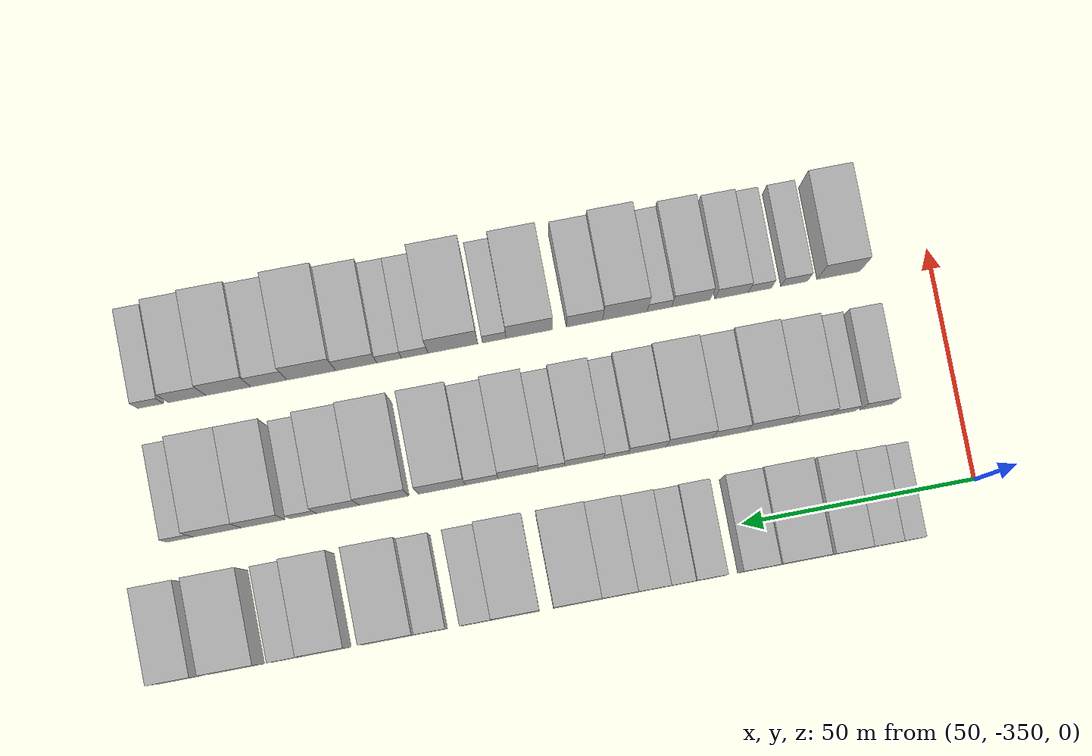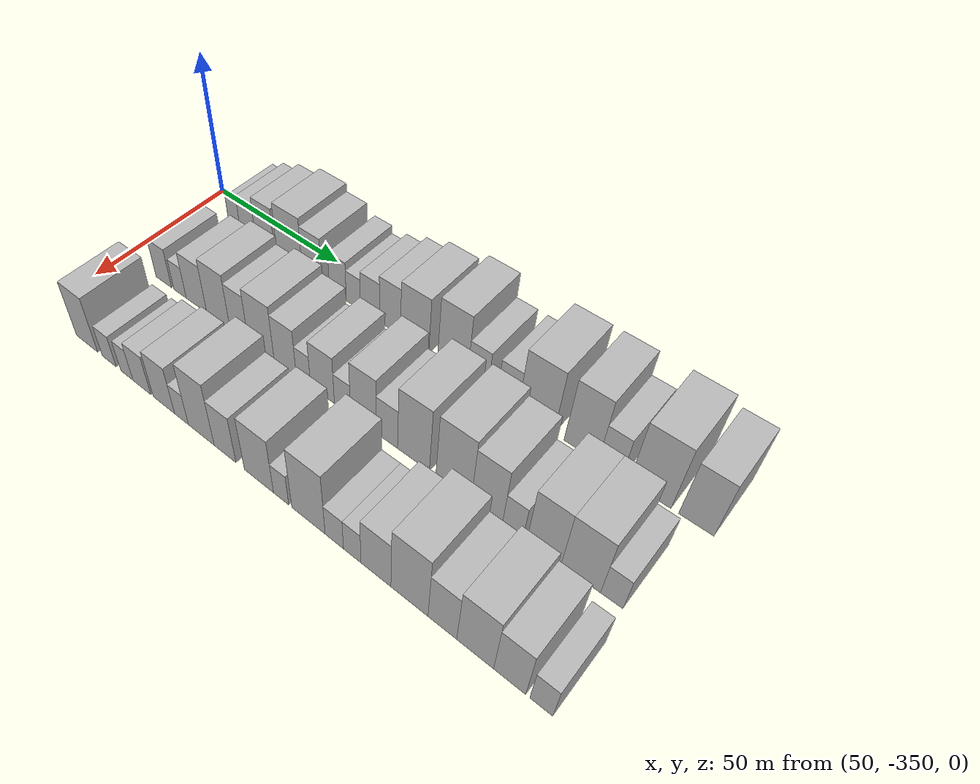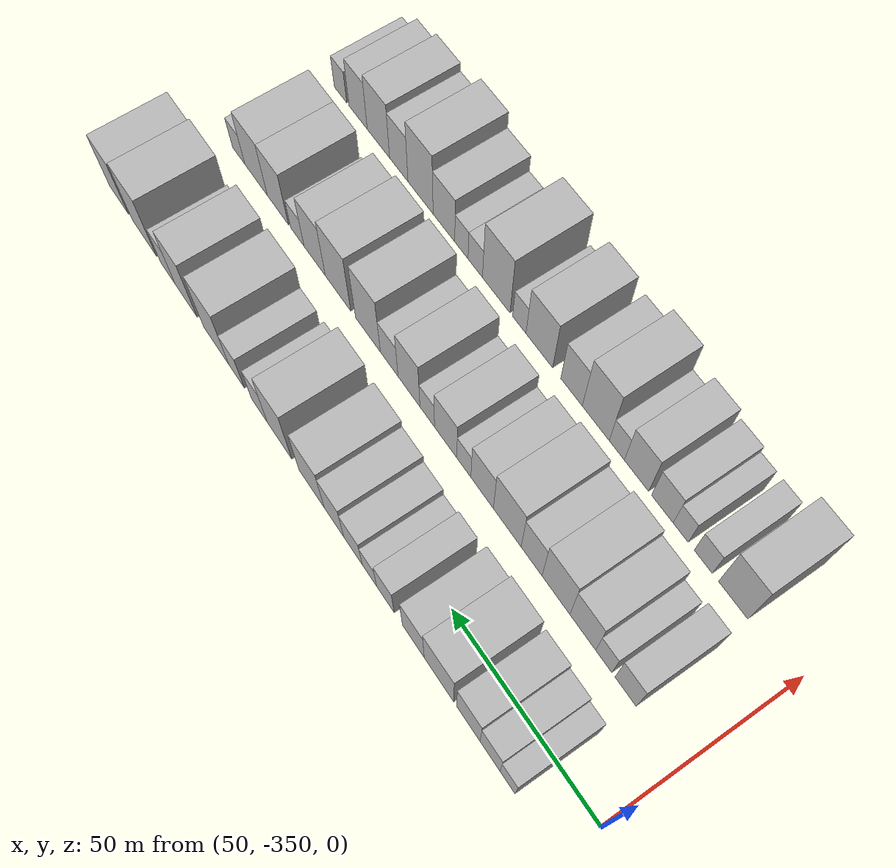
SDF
<sdf version="1.6">
 <world name="default">
  <model name="building_1">
   <static>1</static>
   <pose>50.0000 -333.4852 0 0.000000 0.000000 0.000000</pose>
   <link name="link">
    <pose>0 0 6.00 0 0 0</pose>
    <collision name="collision"><geometry><box><size>20.0000 5.0296 12.0000</size></box></geometry></collision>
    <visual name="visual">
     <cast_shadows>0</cast_shadows>
     <geometry><box><size>20.0000 5.0296 12.0000</size></box></geometry>
     <material>
      <script>
       <uri>model://HANNAS_wall/materials/scripts</uri>
       <uri>model://HANNAS_wall/materials/textures</uri>
       <name>vrc/HANNAS_wall</name>
      </script>
     </material>
    </visual>
   </link>
  </model>
  <model name="building_2">
   <static>1</static>
   <pose>50.0000 -327.6248 0 0.000000 0.000000 0.000000</pose>
   <link name="link">
    <pose>0 0 7.50 0 0 0</pose>
    <collision name="collision"><geometry><box><size>20.0000 6.6912 15.0000</size></box></geometry></collision>
    <visual name="visual">
     <cast_shadows>0</cast_shadows>
     <geometry><box><size>20.0000 6.6912 15.0000</size></box></geometry>
     <material>
      <script>
       <uri>model://HANNAS_wall/materials/scripts</uri>
       <uri>model://HANNAS_wall/materials/textures</uri>
       <name>vrc/HANNAS_wall</name>
      </script>
     </material>
    </visual>
   </link>
  </model>
  <model name="building_3">
   <static>1</static>
   <pose>50.0000 -320.2911 0 0.000000 0.000000 0.000000</pose>
   <link name="link">
    <pose>0 0 9.00 0 0 0</pose>
    <collision name="collision"><geometry><box><size>20.0000 7.9762 18.0000</size></box></geometry></collision>
    <visual name="visual">
     <cast_shadows>0</cast_shadows>
     <geometry><box><size>20.0000 7.9762 18.0000</size></box></geometry>
     <material>
      <script>
       <uri>model://HANNAS_wall/materials/scripts</uri>
       <uri>model://HANNAS_wall/materials/textures</uri>
       <name>vrc/HANNAS_wall</name>
      </script>
     </material>
    </visual>
   </link>
  </model>
  <model name="building_4">
   <static>1</static>
   <pose>50.0000 -310.1145 0 0.000000 0.000000 0.000000</pose>
   <link name="link">
    <pose>0 0 10.50 0 0 0</pose>
    <collision name="collision"><geometry><box><size>20.0000 10.3770 21.0000</size></box></geometry></collision>
    <visual name="visual">
     <cast_shadows>0</cast_shadows>
     <geometry><box><size>20.0000 10.3770 21.0000</size></box></geometry>
     <material>
      <script>
       <uri>model://HANNAS_wall/materials/scripts</uri>
       <uri>model://HANNAS_wall/materials/textures</uri>
       <name>vrc/HANNAS_wall</name>
      </script>
     </material>
    </visual>
   </link>
  </model>
  <model name="building_5">
   <static>1</static>
   <pose>50.0000 -301.0032 0 0.000000 0.000000 0.000000</pose>
   <link name="link">
    <pose>0 0 9.00 0 0 0</pose>
    <collision name="collision"><geometry><box><size>20.0000 7.8455 18.0000</size></box></geometry></collision>
    <visual name="visual">
     <cast_shadows>0</cast_shadows>
     <geometry><box><size>20.0000 7.8455 18.0000</size></box></geometry>
     <material>
      <script>
       <uri>model://HANNAS_wall/materials/scripts</uri>
       <uri>model://HANNAS_wall/materials/textures</uri>
       <name>vrc/HANNAS_wall</name>
      </script>
     </material>
    </visual>
   </link>
  </model>
  <model name="building_6">
   <static>1</static>
   <pose>50.0000 -290.8323 0 0.000000 0.000000 0.000000</pose>
   <link name="link">
    <pose>0 0 7.50 0 0 0</pose>
    <collision name="collision"><geometry><box><size>20.0000 6.4964 15.0000</size></box></geometry></collision>
    <visual name="visual">
     <cast_shadows>0</cast_shadows>
     <geometry><box><size>20.0000 6.4964 15.0000</size></box></geometry>
     <material>
      <script>
       <uri>model://HANNAS_wall/materials/scripts</uri>
       <uri>model://HANNAS_wall/materials/textures</uri>
       <name>vrc/HANNAS_wall</name>
      </script>
     </material>
    </visual>
   </link>
  </model>
  <model name="building_7">
   <static>1</static>
   <pose>50.0000 -284.9107 0 0.000000 0.000000 0.000000</pose>
   <link name="link">
    <pose>0 0 6.00 0 0 0</pose>
    <collision name="collision"><geometry><box><size>20.0000 5.3466 12.0000</size></box></geometry></collision>
    <visual name="visual">
     <cast_shadows>0</cast_shadows>
     <geometry><box><size>20.0000 5.3466 12.0000</size></box></geometry>
     <material>
      <script>
       <uri>model://HANNAS_wall/materials/scripts</uri>
       <uri>model://HANNAS_wall/materials/textures</uri>
       <name>vrc/HANNAS_wall</name>
      </script>
     </material>
    </visual>
   </link>
  </model>
  <model name="building_8">
   <static>1</static>
   <pose>50.0000 -278.7191 0 0.000000 0.000000 0.000000</pose>
   <link name="link">
    <pose>0 0 7.50 0 0 0</pose>
    <collision name="collision"><geometry><box><size>20.0000 7.0367 15.0000</size></box></geometry></collision>
    <visual name="visual">
     <cast_shadows>0</cast_shadows>
     <geometry><box><size>20.0000 7.0367 15.0000</size></box></geometry>
     <material>
      <script>
       <uri>model://HANNAS_wall/materials/scripts</uri>
       <uri>model://HANNAS_wall/materials/textures</uri>
       <name>vrc/HANNAS_wall</name>
      </script>
     </material>
    </visual>
   </link>
  </model>
  <model name="building_9">
   <static>1</static>
   <pose>50.0000 -271.3886 0 0.000000 0.000000 0.000000</pose>
   <link name="link">
    <pose>0 0 9.00 0 0 0</pose>
    <collision name="collision"><geometry><box><size>20.0000 7.6242 18.0000</size></box></geometry></collision>
    <visual name="visual">
     <cast_shadows>0</cast_shadows>
     <geometry><box><size>20.0000 7.6242 18.0000</size></box></geometry>
     <material>
      <script>
       <uri>model://HANNAS_wall/materials/scripts</uri>
       <uri>model://HANNAS_wall/materials/textures</uri>
       <name>vrc/HANNAS_wall</name>
      </script>
     </material>
    </visual>
   </link>
  </model>
  <model name="building_10">
   <static>1</static>
   <pose>50.0000 -262.5840 0 0.000000 0.000000 0.000000</pose>
   <link name="link">
    <pose>0 0 10.50 0 0 0</pose>
    <collision name="collision"><geometry><box><size>20.0000 9.9851 21.0000</size></box></geometry></collision>
    <visual name="visual">
     <cast_shadows>0</cast_shadows>
     <geometry><box><size>20.0000 9.9851 21.0000</size></box></geometry>
     <material>
      <script>
       <uri>model://HANNAS_wall/materials/scripts</uri>
       <uri>model://HANNAS_wall/materials/textures</uri>
       <name>vrc/HANNAS_wall</name>
      </script>
     </material>
    </visual>
   </link>
  </model>
  <model name="building_11">
   <static>1</static>
   <pose>50.0000 -249.5773 0 0.000000 0.000000 0.000000</pose>
   <link name="link">
    <pose>0 0 12.00 0 0 0</pose>
    <collision name="collision"><geometry><box><size>20.0000 10.0284 24.0000</size></box></geometry></collision>
    <visual name="visual">
     <cast_shadows>0</cast_shadows>
     <geometry><box><size>20.0000 10.0284 24.0000</size></box></geometry>
     <material>
      <script>
       <uri>model://HANNAS_wall/materials/scripts</uri>
       <uri>model://HANNAS_wall/materials/textures</uri>
       <name>vrc/HANNAS_wall</name>
      </script>
     </material>
    </visual>
   </link>
  </model>
  <model name="building_12">
   <static>1</static>
   <pose>50.0000 -241.2419 0 0.000000 0.000000 0.000000</pose>
   <link name="link">
    <pose>0 0 7.50 0 0 0</pose>
    <collision name="collision"><geometry><box><size>20.0000 6.6423 15.0000</size></box></geometry></collision>
    <visual name="visual">
     <cast_shadows>0</cast_shadows>
     <geometry><box><size>20.0000 6.6423 15.0000</size></box></geometry>
     <material>
      <script>
       <uri>model://HANNAS_wall/materials/scripts</uri>
       <uri>model://HANNAS_wall/materials/textures</uri>
       <name>vrc/HANNAS_wall</name>
      </script>
     </material>
    </visual>
   </link>
  </model>
  <model name="building_13">
   <static>1</static>
   <pose>50.0000 -231.6286 0 0.000000 0.000000 0.000000</pose>
   <link name="link">
    <pose>0 0 7.50 0 0 0</pose>
    <collision name="collision"><geometry><box><size>20.0000 6.5844 15.0000</size></box></geometry></collision>
    <visual name="visual">
     <cast_shadows>0</cast_shadows>
     <geometry><box><size>20.0000 6.5844 15.0000</size></box></geometry>
     <material>
      <script>
       <uri>model://HANNAS_wall/materials/scripts</uri>
       <uri>model://HANNAS_wall/materials/textures</uri>
       <name>vrc/HANNAS_wall</name>
      </script>
     </material>
    </visual>
   </link>
  </model>
  <model name="building_14">
   <static>1</static>
   <pose>50.0000 -222.8365 0 0.000000 0.000000 0.000000</pose>
   <link name="link">
    <pose>0 0 12.00 0 0 0</pose>
    <collision name="collision"><geometry><box><size>20.0000 10.9997 24.0000</size></box></geometry></collision>
    <visual name="visual">
     <cast_shadows>0</cast_shadows>
     <geometry><box><size>20.0000 10.9997 24.0000</size></box></geometry>
     <material>
      <script>
       <uri>model://HANNAS_wall/materials/scripts</uri>
       <uri>model://HANNAS_wall/materials/textures</uri>
       <name>vrc/HANNAS_wall</name>
      </script>
     </material>
    </visual>
   </link>
  </model>
  <model name="building_15">
   <static>1</static>
   <pose>50.0000 -209.4388 0 0.000000 0.000000 0.000000</pose>
   <link name="link">
    <pose>0 0 12.00 0 0 0</pose>
    <collision name="collision"><geometry><box><size>20.0000 9.7958 24.0000</size></box></geometry></collision>
    <visual name="visual">
     <cast_shadows>0</cast_shadows>
     <geometry><box><size>20.0000 9.7958 24.0000</size></box></geometry>
     <material>
      <script>
       <uri>model://HANNAS_wall/materials/scripts</uri>
       <uri>model://HANNAS_wall/materials/textures</uri>
       <name>vrc/HANNAS_wall</name>
      </script>
     </material>
    </visual>
   </link>
  </model>
  <model name="building_16">
   <static>1</static>
   <pose>50.0000 -201.1808 0 0.000000 0.000000 0.000000</pose>
   <link name="link">
    <pose>0 0 7.50 0 0 0</pose>
    <collision name="collision"><geometry><box><size>20.0000 6.7202 15.0000</size></box></geometry></collision>
    <visual name="visual">
     <cast_shadows>0</cast_shadows>
     <geometry><box><size>20.0000 6.7202 15.0000</size></box></geometry>
     <material>
      <script>
       <uri>model://HANNAS_wall/materials/scripts</uri>
       <uri>model://HANNAS_wall/materials/textures</uri>
       <name>vrc/HANNAS_wall</name>
      </script>
     </material>
    </visual>
   </link>
  </model>
  <model name="building_17">
   <static>1</static>
   <pose>50.0000 -190.1766 0 0.000000 0.000000 0.000000</pose>
   <link name="link">
    <pose>0 0 12.00 0 0 0</pose>
    <collision name="collision"><geometry><box><size>20.0000 11.2882 24.0000</size></box></geometry></collision>
    <visual name="visual">
     <cast_shadows>0</cast_shadows>
     <geometry><box><size>20.0000 11.2882 24.0000</size></box></geometry>
     <material>
      <script>
       <uri>model://HANNAS_wall/materials/scripts</uri>
       <uri>model://HANNAS_wall/materials/textures</uri>
       <name>vrc/HANNAS_wall</name>
      </script>
     </material>
    </visual>
   </link>
  </model>
  <model name="building_18">
   <static>1</static>
   <pose>50.0000 -177.9957 0 0.000000 0.000000 0.000000</pose>
   <link name="link">
    <pose>0 0 10.50 0 0 0</pose>
    <collision name="collision"><geometry><box><size>20.0000 9.0736 21.0000</size></box></geometry></collision>
    <visual name="visual">
     <cast_shadows>0</cast_shadows>
     <geometry><box><size>20.0000 9.0736 21.0000</size></box></geometry>
     <material>
      <script>
       <uri>model://HANNAS_wall/materials/scripts</uri>
       <uri>model://HANNAS_wall/materials/textures</uri>
       <name>vrc/HANNAS_wall</name>
      </script>
     </material>
    </visual>
   </link>
  </model>
  <model name="building_74">
   <static>1</static>
   <pose>79.0000 -332.5751 0 0.000000 0.000000 0.000000</pose>
   <link name="link">
    <pose>0 0 7.50 0 0 0</pose>
    <collision name="collision"><geometry><box><size>20.0000 6.8497 15.0000</size></box></geometry></collision>
    <visual name="visual">
     <cast_shadows>0</cast_shadows>
     <geometry><box><size>20.0000 6.8497 15.0000</size></box></geometry>
     <material>
      <script>
       <uri>model://HANNAS_wall/materials/scripts</uri>
       <uri>model://HANNAS_wall/materials/textures</uri>
       <name>vrc/HANNAS_wall</name>
      </script>
     </material>
    </visual>
   </link>
  </model>
  <model name="building_75">
   <static>1</static>
   <pose>79.0000 -325.4915 0 0.000000 0.000000 0.000000</pose>
   <link name="link">
    <pose>0 0 6.00 0 0 0</pose>
    <collision name="collision"><geometry><box><size>20.0000 5.3175 12.0000</size></box></geometry></collision>
    <visual name="visual">
     <cast_shadows>0</cast_shadows>
     <geometry><box><size>20.0000 5.3175 12.0000</size></box></geometry>
     <material>
      <script>
       <uri>model://HANNAS_wall/materials/scripts</uri>
       <uri>model://HANNAS_wall/materials/textures</uri>
       <name>vrc/HANNAS_wall</name>
      </script>
     </material>
    </visual>
   </link>
  </model>
  <model name="building_76">
   <static>1</static>
   <pose>79.0000 -318.4937 0 0.000000 0.000000 0.000000</pose>
   <link name="link">
    <pose>0 0 9.00 0 0 0</pose>
    <collision name="collision"><geometry><box><size>20.0000 8.6781 18.0000</size></box></geometry></collision>
    <visual name="visual">
     <cast_shadows>0</cast_shadows>
     <geometry><box><size>20.0000 8.6781 18.0000</size></box></geometry>
     <material>
      <script>
       <uri>model://HANNAS_wall/materials/scripts</uri>
       <uri>model://HANNAS_wall/materials/textures</uri>
       <name>vrc/HANNAS_wall</name>
      </script>
     </material>
    </visual>
   </link>
  </model>
  <model name="building_77">
   <static>1</static>
   <pose>79.0000 -309.3799 0 0.000000 0.000000 0.000000</pose>
   <link name="link">
    <pose>0 0 10.50 0 0 0</pose>
    <collision name="collision"><geometry><box><size>20.0000 9.5495 21.0000</size></box></geometry></collision>
    <visual name="visual">
     <cast_shadows>0</cast_shadows>
     <geometry><box><size>20.0000 9.5495 21.0000</size></box></geometry>
     <material>
      <script>
       <uri>model://HANNAS_wall/materials/scripts</uri>
       <uri>model://HANNAS_wall/materials/textures</uri>
       <name>vrc/HANNAS_wall</name>
      </script>
     </material>
    </visual>
   </link>
  </model>
  <model name="building_78">
   <static>1</static>
   <pose>79.0000 -300.9435 0 0.000000 0.000000 0.000000</pose>
   <link name="link">
    <pose>0 0 9.00 0 0 0</pose>
    <collision name="collision"><geometry><box><size>20.0000 7.3232 18.0000</size></box></geometry></collision>
    <visual name="visual">
     <cast_shadows>0</cast_shadows>
     <geometry><box><size>20.0000 7.3232 18.0000</size></box></geometry>
     <material>
      <script>
       <uri>model://HANNAS_wall/materials/scripts</uri>
       <uri>model://HANNAS_wall/materials/textures</uri>
       <name>vrc/HANNAS_wall</name>
      </script>
     </material>
    </visual>
   </link>
  </model>
  <model name="building_79">
   <static>1</static>
   <pose>79.0000 -292.3238 0 0.000000 0.000000 0.000000</pose>
   <link name="link">
    <pose>0 0 10.50 0 0 0</pose>
    <collision name="collision"><geometry><box><size>20.0000 9.9163 21.0000</size></box></geometry></collision>
    <visual name="visual">
     <cast_shadows>0</cast_shadows>
     <geometry><box><size>20.0000 9.9163 21.0000</size></box></geometry>
     <material>
      <script>
       <uri>model://HANNAS_wall/materials/scripts</uri>
       <uri>model://HANNAS_wall/materials/textures</uri>
       <name>vrc/HANNAS_wall</name>
      </script>
     </material>
    </visual>
   </link>
  </model>
  <model name="building_80">
   <static>1</static>
   <pose>79.0000 -283.2356 0 0.000000 0.000000 0.000000</pose>
   <link name="link">
    <pose>0 0 9.00 0 0 0</pose>
    <collision name="collision"><geometry><box><size>20.0000 8.2599 18.0000</size></box></geometry></collision>
    <visual name="visual">
     <cast_shadows>0</cast_shadows>
     <geometry><box><size>20.0000 8.2599 18.0000</size></box></geometry>
     <material>
      <script>
       <uri>model://HANNAS_wall/materials/scripts</uri>
       <uri>model://HANNAS_wall/materials/textures</uri>
       <name>vrc/HANNAS_wall</name>
      </script>
     </material>
    </visual>
   </link>
  </model>
  <model name="building_81">
   <static>1</static>
   <pose>79.0000 -276.4984 0 0.000000 0.000000 0.000000</pose>
   <link name="link">
    <pose>0 0 6.00 0 0 0</pose>
    <collision name="collision"><geometry><box><size>20.0000 5.2145 12.0000</size></box></geometry></collision>
    <visual name="visual">
     <cast_shadows>0</cast_shadows>
     <geometry><box><size>20.0000 5.2145 12.0000</size></box></geometry>
     <material>
      <script>
       <uri>model://HANNAS_wall/materials/scripts</uri>
       <uri>model://HANNAS_wall/materials/textures</uri>
       <name>vrc/HANNAS_wall</name>
      </script>
     </material>
    </visual>
   </link>
  </model>
  <model name="building_82">
   <static>1</static>
   <pose>79.0000 -269.6746 0 0.000000 0.000000 0.000000</pose>
   <link name="link">
    <pose>0 0 9.00 0 0 0</pose>
    <collision name="collision"><geometry><box><size>20.0000 8.4332 18.0000</size></box></geometry></collision>
    <visual name="visual">
     <cast_shadows>0</cast_shadows>
     <geometry><box><size>20.0000 8.4332 18.0000</size></box></geometry>
     <material>
      <script>
       <uri>model://HANNAS_wall/materials/scripts</uri>
       <uri>model://HANNAS_wall/materials/textures</uri>
       <name>vrc/HANNAS_wall</name>
      </script>
     </material>
    </visual>
   </link>
  </model>
  <model name="building_83">
   <static>1</static>
   <pose>79.0000 -262.6511 0 0.000000 0.000000 0.000000</pose>
   <link name="link">
    <pose>0 0 6.00 0 0 0</pose>
    <collision name="collision"><geometry><box><size>20.0000 5.6137 12.0000</size></box></geometry></collision>
    <visual name="visual">
     <cast_shadows>0</cast_shadows>
     <geometry><box><size>20.0000 5.6137 12.0000</size></box></geometry>
     <material>
      <script>
       <uri>model://HANNAS_wall/materials/scripts</uri>
       <uri>model://HANNAS_wall/materials/textures</uri>
       <name>vrc/HANNAS_wall</name>
      </script>
     </material>
    </visual>
   </link>
  </model>
  <model name="building_84">
   <static>1</static>
   <pose>79.0000 -255.5519 0 0.000000 0.000000 0.000000</pose>
   <link name="link">
    <pose>0 0 10.50 0 0 0</pose>
    <collision name="collision"><geometry><box><size>20.0000 8.5848 21.0000</size></box></geometry></collision>
    <visual name="visual">
     <cast_shadows>0</cast_shadows>
     <geometry><box><size>20.0000 8.5848 21.0000</size></box></geometry>
     <material>
      <script>
       <uri>model://HANNAS_wall/materials/scripts</uri>
       <uri>model://HANNAS_wall/materials/textures</uri>
       <name>vrc/HANNAS_wall</name>
      </script>
     </material>
    </visual>
   </link>
  </model>
  <model name="building_85">
   <static>1</static>
   <pose>79.0000 -247.7483 0 0.000000 0.000000 0.000000</pose>
   <link name="link">
    <pose>0 0 7.50 0 0 0</pose>
    <collision name="collision"><geometry><box><size>20.0000 7.0223 15.0000</size></box></geometry></collision>
    <visual name="visual">
     <cast_shadows>0</cast_shadows>
     <geometry><box><size>20.0000 7.0223 15.0000</size></box></geometry>
     <material>
      <script>
       <uri>model://HANNAS_wall/materials/scripts</uri>
       <uri>model://HANNAS_wall/materials/textures</uri>
       <name>vrc/HANNAS_wall</name>
      </script>
     </material>
    </visual>
   </link>
  </model>
  <model name="building_86">
   <static>1</static>
   <pose>79.0000 -239.1898 0 0.000000 0.000000 0.000000</pose>
   <link name="link">
    <pose>0 0 12.00 0 0 0</pose>
    <collision name="collision"><geometry><box><size>20.0000 10.0948 24.0000</size></box></geometry></collision>
    <visual name="visual">
     <cast_shadows>0</cast_shadows>
     <geometry><box><size>20.0000 10.0948 24.0000</size></box></geometry>
     <material>
      <script>
       <uri>model://HANNAS_wall/materials/scripts</uri>
       <uri>model://HANNAS_wall/materials/textures</uri>
       <name>vrc/HANNAS_wall</name>
      </script>
     </material>
    </visual>
   </link>
  </model>
  <model name="building_87">
   <static>1</static>
   <pose>79.0000 -226.8092 0 0.000000 0.000000 0.000000</pose>
   <link name="link">
    <pose>0 0 12.00 0 0 0</pose>
    <collision name="collision"><geometry><box><size>20.0000 10.6663 24.0000</size></box></geometry></collision>
    <visual name="visual">
     <cast_shadows>0</cast_shadows>
     <geometry><box><size>20.0000 10.6663 24.0000</size></box></geometry>
     <material>
      <script>
       <uri>model://HANNAS_wall/materials/scripts</uri>
       <uri>model://HANNAS_wall/materials/textures</uri>
       <name>vrc/HANNAS_wall</name>
      </script>
     </material>
    </visual>
   </link>
  </model>
  <model name="building_88">
   <static>1</static>
   <pose>79.0000 -216.9134 0 0.000000 0.000000 0.000000</pose>
   <link name="link">
    <pose>0 0 10.50 0 0 0</pose>
    <collision name="collision"><geometry><box><size>20.0000 9.1253 21.0000</size></box></geometry></collision>
    <visual name="visual">
     <cast_shadows>0</cast_shadows>
     <geometry><box><size>20.0000 9.1253 21.0000</size></box></geometry>
     <material>
      <script>
       <uri>model://HANNAS_wall/materials/scripts</uri>
       <uri>model://HANNAS_wall/materials/textures</uri>
       <name>vrc/HANNAS_wall</name>
      </script>
     </material>
    </visual>
   </link>
  </model>
  <model name="building_89">
   <static>1</static>
   <pose>79.0000 -209.4420 0 0.000000 0.000000 0.000000</pose>
   <link name="link">
    <pose>0 0 6.00 0 0 0</pose>
    <collision name="collision"><geometry><box><size>20.0000 5.8174 12.0000</size></box></geometry></collision>
    <visual name="visual">
     <cast_shadows>0</cast_shadows>
     <geometry><box><size>20.0000 5.8174 12.0000</size></box></geometry>
     <material>
      <script>
       <uri>model://HANNAS_wall/materials/scripts</uri>
       <uri>model://HANNAS_wall/materials/textures</uri>
       <name>vrc/HANNAS_wall</name>
      </script>
     </material>
    </visual>
   </link>
  </model>
  <model name="building_90">
   <static>1</static>
   <pose>79.0000 -200.8661 0 0.000000 0.000000 0.000000</pose>
   <link name="link">
    <pose>0 0 10.50 0 0 0</pose>
    <collision name="collision"><geometry><box><size>20.0000 9.3345 21.0000</size></box></geometry></collision>
    <visual name="visual">
     <cast_shadows>0</cast_shadows>
     <geometry><box><size>20.0000 9.3345 21.0000</size></box></geometry>
     <material>
      <script>
       <uri>model://HANNAS_wall/materials/scripts</uri>
       <uri>model://HANNAS_wall/materials/textures</uri>
       <name>vrc/HANNAS_wall</name>
      </script>
     </material>
    </visual>
   </link>
  </model>
  <model name="building_91">
   <static>1</static>
   <pose>79.0000 -191.0532 0 0.000000 0.000000 0.000000</pose>
   <link name="link">
    <pose>0 0 10.50 0 0 0</pose>
    <collision name="collision"><geometry><box><size>20.0000 10.2913 21.0000</size></box></geometry></collision>
    <visual name="visual">
     <cast_shadows>0</cast_shadows>
     <geometry><box><size>20.0000 10.2913 21.0000</size></box></geometry>
     <material>
      <script>
       <uri>model://HANNAS_wall/materials/scripts</uri>
       <uri>model://HANNAS_wall/materials/textures</uri>
       <name>vrc/HANNAS_wall</name>
      </script>
     </material>
    </visual>
   </link>
  </model>
  <model name="building_92">
   <static>1</static>
   <pose>79.0000 -183.0735 0 0.000000 0.000000 0.000000</pose>
   <link name="link">
    <pose>0 0 6.00 0 0 0</pose>
    <collision name="collision"><geometry><box><size>20.0000 5.6679 12.0000</size></box></geometry></collision>
    <visual name="visual">
     <cast_shadows>0</cast_shadows>
     <geometry><box><size>20.0000 5.6679 12.0000</size></box></geometry>
     <material>
      <script>
       <uri>model://HANNAS_wall/materials/scripts</uri>
       <uri>model://HANNAS_wall/materials/textures</uri>
       <name>vrc/HANNAS_wall</name>
      </script>
     </material>
    </visual>
   </link>
  </model>
  <model name="building_150">
   <static>1</static>
   <pose>108.0000 -330.3379 0 0.000000 0.000000 0.000000</pose>
   <link name="link">
    <pose>0 0 10.50 0 0 0</pose>
    <collision name="collision"><geometry><box><size>20.0000 9.3241 21.0000</size></box></geometry></collision>
    <visual name="visual">
     <cast_shadows>0</cast_shadows>
     <geometry><box><size>20.0000 9.3241 21.0000</size></box></geometry>
     <material>
      <script>
       <uri>model://HANNAS_wall/materials/scripts</uri>
       <uri>model://HANNAS_wall/materials/textures</uri>
       <name>vrc/HANNAS_wall</name>
      </script>
     </material>
    </visual>
   </link>
  </model>
  <model name="building_151">
   <static>1</static>
   <pose>108.0000 -320.7424 0 0.000000 0.000000 0.000000</pose>
   <link name="link">
    <pose>0 0 6.00 0 0 0</pose>
    <collision name="collision"><geometry><box><size>20.0000 5.8670 12.0000</size></box></geometry></collision>
    <visual name="visual">
     <cast_shadows>0</cast_shadows>
     <geometry><box><size>20.0000 5.8670 12.0000</size></box></geometry>
     <material>
      <script>
       <uri>model://HANNAS_wall/materials/scripts</uri>
       <uri>model://HANNAS_wall/materials/textures</uri>
       <name>vrc/HANNAS_wall</name>
      </script>
     </material>
    </visual>
   </link>
  </model>
  <model name="building_152">
   <static>1</static>
   <pose>108.0000 -313.2993 0 0.000000 0.000000 0.000000</pose>
   <link name="link">
    <pose>0 0 6.00 0 0 0</pose>
    <collision name="collision"><geometry><box><size>20.0000 5.0191 12.0000</size></box></geometry></collision>
    <visual name="visual">
     <cast_shadows>0</cast_shadows>
     <geometry><box><size>20.0000 5.0191 12.0000</size></box></geometry>
     <material>
      <script>
       <uri>model://HANNAS_wall/materials/scripts</uri>
       <uri>model://HANNAS_wall/materials/textures</uri>
       <name>vrc/HANNAS_wall</name>
      </script>
     </material>
    </visual>
   </link>
  </model>
  <model name="building_153">
   <static>1</static>
   <pose>108.0000 -307.1667 0 0.000000 0.000000 0.000000</pose>
   <link name="link">
    <pose>0 0 7.50 0 0 0</pose>
    <collision name="collision"><geometry><box><size>20.0000 7.2461 15.0000</size></box></geometry></collision>
    <visual name="visual">
     <cast_shadows>0</cast_shadows>
     <geometry><box><size>20.0000 7.2461 15.0000</size></box></geometry>
     <material>
      <script>
       <uri>model://HANNAS_wall/materials/scripts</uri>
       <uri>model://HANNAS_wall/materials/textures</uri>
       <name>vrc/HANNAS_wall</name>
      </script>
     </material>
    </visual>
   </link>
  </model>
  <model name="building_154">
   <static>1</static>
   <pose>108.0000 -298.3524 0 0.000000 0.000000 0.000000</pose>
   <link name="link">
    <pose>0 0 9.00 0 0 0</pose>
    <collision name="collision"><geometry><box><size>20.0000 8.3826 18.0000</size></box></geometry></collision>
    <visual name="visual">
     <cast_shadows>0</cast_shadows>
     <geometry><box><size>20.0000 8.3826 18.0000</size></box></geometry>
     <material>
      <script>
       <uri>model://HANNAS_wall/materials/scripts</uri>
       <uri>model://HANNAS_wall/materials/textures</uri>
       <name>vrc/HANNAS_wall</name>
      </script>
     </material>
    </visual>
   </link>
  </model>
  <model name="building_155">
   <static>1</static>
   <pose>108.0000 -291.5185 0 0.000000 0.000000 0.000000</pose>
   <link name="link">
    <pose>0 0 6.00 0 0 0</pose>
    <collision name="collision"><geometry><box><size>20.0000 5.2852 12.0000</size></box></geometry></collision>
    <visual name="visual">
     <cast_shadows>0</cast_shadows>
     <geometry><box><size>20.0000 5.2852 12.0000</size></box></geometry>
     <material>
      <script>
       <uri>model://HANNAS_wall/materials/scripts</uri>
       <uri>model://HANNAS_wall/materials/textures</uri>
       <name>vrc/HANNAS_wall</name>
      </script>
     </material>
    </visual>
   </link>
  </model>
  <model name="building_156">
   <static>1</static>
   <pose>108.0000 -284.0687 0 0.000000 0.000000 0.000000</pose>
   <link name="link">
    <pose>0 0 12.00 0 0 0</pose>
    <collision name="collision"><geometry><box><size>20.0000 9.6143 24.0000</size></box></geometry></collision>
    <visual name="visual">
     <cast_shadows>0</cast_shadows>
     <geometry><box><size>20.0000 9.6143 24.0000</size></box></geometry>
     <material>
      <script>
       <uri>model://HANNAS_wall/materials/scripts</uri>
       <uri>model://HANNAS_wall/materials/textures</uri>
       <name>vrc/HANNAS_wall</name>
      </script>
     </material>
    </visual>
   </link>
  </model>
  <model name="building_157">
   <static>1</static>
   <pose>108.0000 -275.3544 0 0.000000 0.000000 0.000000</pose>
   <link name="link">
    <pose>0 0 9.00 0 0 0</pose>
    <collision name="collision"><geometry><box><size>20.0000 7.8143 18.0000</size></box></geometry></collision>
    <visual name="visual">
     <cast_shadows>0</cast_shadows>
     <geometry><box><size>20.0000 7.8143 18.0000</size></box></geometry>
     <material>
      <script>
       <uri>model://HANNAS_wall/materials/scripts</uri>
       <uri>model://HANNAS_wall/materials/textures</uri>
       <name>vrc/HANNAS_wall</name>
      </script>
     </material>
    </visual>
   </link>
  </model>
  <model name="building_158">
   <static>1</static>
   <pose>108.0000 -263.4457 0 0.000000 0.000000 0.000000</pose>
   <link name="link">
    <pose>0 0 10.50 0 0 0</pose>
    <collision name="collision"><geometry><box><size>20.0000 10.0030 21.0000</size></box></geometry></collision>
    <visual name="visual">
     <cast_shadows>0</cast_shadows>
     <geometry><box><size>20.0000 10.0030 21.0000</size></box></geometry>
     <material>
      <script>
       <uri>model://HANNAS_wall/materials/scripts</uri>
       <uri>model://HANNAS_wall/materials/textures</uri>
       <name>vrc/HANNAS_wall</name>
      </script>
     </material>
    </visual>
   </link>
  </model>
  <model name="building_159">
   <static>1</static>
   <pose>108.0000 -255.9023 0 0.000000 0.000000 0.000000</pose>
   <link name="link">
    <pose>0 0 6.00 0 0 0</pose>
    <collision name="collision"><geometry><box><size>20.0000 5.0839 12.0000</size></box></geometry></collision>
    <visual name="visual">
     <cast_shadows>0</cast_shadows>
     <geometry><box><size>20.0000 5.0839 12.0000</size></box></geometry>
     <material>
      <script>
       <uri>model://HANNAS_wall/materials/scripts</uri>
       <uri>model://HANNAS_wall/materials/textures</uri>
       <name>vrc/HANNAS_wall</name>
      </script>
     </material>
    </visual>
   </link>
  </model>
  <model name="building_160">
   <static>1</static>
   <pose>108.0000 -246.9982 0 0.000000 0.000000 0.000000</pose>
   <link name="link">
    <pose>0 0 12.00 0 0 0</pose>
    <collision name="collision"><geometry><box><size>20.0000 10.7242 24.0000</size></box></geometry></collision>
    <visual name="visual">
     <cast_shadows>0</cast_shadows>
     <geometry><box><size>20.0000 10.7242 24.0000</size></box></geometry>
     <material>
      <script>
       <uri>model://HANNAS_wall/materials/scripts</uri>
       <uri>model://HANNAS_wall/materials/textures</uri>
       <name>vrc/HANNAS_wall</name>
      </script>
     </material>
    </visual>
   </link>
  </model>
  <model name="building_161">
   <static>1</static>
   <pose>108.0000 -238.7789 0 0.000000 0.000000 0.000000</pose>
   <link name="link">
    <pose>0 0 6.00 0 0 0</pose>
    <collision name="collision"><geometry><box><size>20.0000 5.7144 12.0000</size></box></geometry></collision>
    <visual name="visual">
     <cast_shadows>0</cast_shadows>
     <geometry><box><size>20.0000 5.7144 12.0000</size></box></geometry>
     <material>
      <script>
       <uri>model://HANNAS_wall/materials/scripts</uri>
       <uri>model://HANNAS_wall/materials/textures</uri>
       <name>vrc/HANNAS_wall</name>
      </script>
     </material>
    </visual>
   </link>
  </model>
  <model name="building_162">
   <static>1</static>
   <pose>108.0000 -233.2662 0 0.000000 0.000000 0.000000</pose>
   <link name="link">
    <pose>0 0 6.00 0 0 0</pose>
    <collision name="collision"><geometry><box><size>20.0000 5.3111 12.0000</size></box></geometry></collision>
    <visual name="visual">
     <cast_shadows>0</cast_shadows>
     <geometry><box><size>20.0000 5.3111 12.0000</size></box></geometry>
     <material>
      <script>
       <uri>model://HANNAS_wall/materials/scripts</uri>
       <uri>model://HANNAS_wall/materials/textures</uri>
       <name>vrc/HANNAS_wall</name>
      </script>
     </material>
    </visual>
   </link>
  </model>
  <model name="building_163">
   <static>1</static>
   <pose>108.0000 -226.1937 0 0.000000 0.000000 0.000000</pose>
   <link name="link">
    <pose>0 0 9.00 0 0 0</pose>
    <collision name="collision"><geometry><box><size>20.0000 8.8339 18.0000</size></box></geometry></collision>
    <visual name="visual">
     <cast_shadows>0</cast_shadows>
     <geometry><box><size>20.0000 8.8339 18.0000</size></box></geometry>
     <material>
      <script>
       <uri>model://HANNAS_wall/materials/scripts</uri>
       <uri>model://HANNAS_wall/materials/textures</uri>
       <name>vrc/HANNAS_wall</name>
      </script>
     </material>
    </visual>
   </link>
  </model>
  <model name="building_164">
   <static>1</static>
   <pose>108.0000 -216.5209 0 0.000000 0.000000 0.000000</pose>
   <link name="link">
    <pose>0 0 12.00 0 0 0</pose>
    <collision name="collision"><geometry><box><size>20.0000 10.5118 24.0000</size></box></geometry></collision>
    <visual name="visual">
     <cast_shadows>0</cast_shadows>
     <geometry><box><size>20.0000 10.5118 24.0000</size></box></geometry>
     <material>
      <script>
       <uri>model://HANNAS_wall/materials/scripts</uri>
       <uri>model://HANNAS_wall/materials/textures</uri>
       <name>vrc/HANNAS_wall</name>
      </script>
     </material>
    </visual>
   </link>
  </model>
  <model name="building_165">
   <static>1</static>
   <pose>108.0000 -207.3585 0 0.000000 0.000000 0.000000</pose>
   <link name="link">
    <pose>0 0 9.00 0 0 0</pose>
    <collision name="collision"><geometry><box><size>20.0000 7.8129 18.0000</size></box></geometry></collision>
    <visual name="visual">
     <cast_shadows>0</cast_shadows>
     <geometry><box><size>20.0000 7.8129 18.0000</size></box></geometry>
     <material>
      <script>
       <uri>model://HANNAS_wall/materials/scripts</uri>
       <uri>model://HANNAS_wall/materials/textures</uri>
       <name>vrc/HANNAS_wall</name>
      </script>
     </material>
    </visual>
   </link>
  </model>
  <model name="building_166">
   <static>1</static>
   <pose>108.0000 -198.6163 0 0.000000 0.000000 0.000000</pose>
   <link name="link">
    <pose>0 0 10.50 0 0 0</pose>
    <collision name="collision"><geometry><box><size>20.0000 9.6715 21.0000</size></box></geometry></collision>
    <visual name="visual">
     <cast_shadows>0</cast_shadows>
     <geometry><box><size>20.0000 9.6715 21.0000</size></box></geometry>
     <material>
      <script>
       <uri>model://HANNAS_wall/materials/scripts</uri>
       <uri>model://HANNAS_wall/materials/textures</uri>
       <name>vrc/HANNAS_wall</name>
      </script>
     </material>
    </visual>
   </link>
  </model>
  <model name="building_167">
   <static>1</static>
   <pose>108.0000 -189.7445 0 0.000000 0.000000 0.000000</pose>
   <link name="link">
    <pose>0 0 9.00 0 0 0</pose>
    <collision name="collision"><geometry><box><size>20.0000 8.0721 18.0000</size></box></geometry></collision>
    <visual name="visual">
     <cast_shadows>0</cast_shadows>
     <geometry><box><size>20.0000 8.0721 18.0000</size></box></geometry>
     <material>
      <script>
       <uri>model://HANNAS_wall/materials/scripts</uri>
       <uri>model://HANNAS_wall/materials/textures</uri>
       <name>vrc/HANNAS_wall</name>
      </script>
     </material>
    </visual>
   </link>
  </model>
  <model name="building_168">
   <static>1</static>
   <pose>108.0000 -181.9226 0 0.000000 0.000000 0.000000</pose>
   <link name="link">
    <pose>0 0 6.00 0 0 0</pose>
    <collision name="collision"><geometry><box><size>20.0000 5.5718 12.0000</size></box></geometry></collision>
    <visual name="visual">
     <cast_shadows>0</cast_shadows>
     <geometry><box><size>20.0000 5.5718 12.0000</size></box></geometry>
     <material>
      <script>
       <uri>model://HANNAS_wall/materials/scripts</uri>
       <uri>model://HANNAS_wall/materials/textures</uri>
       <name>vrc/HANNAS_wall</name>
      </script>
     </material>
    </visual>
   </link>
  </model>
 </world>
</sdf>
